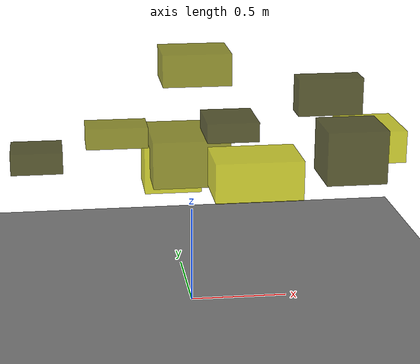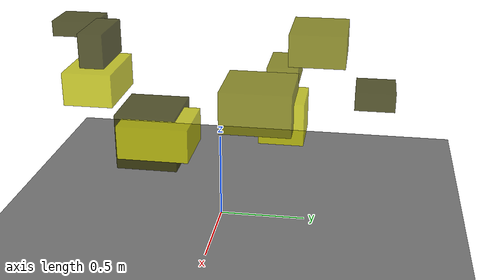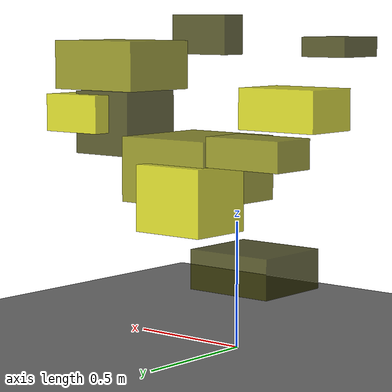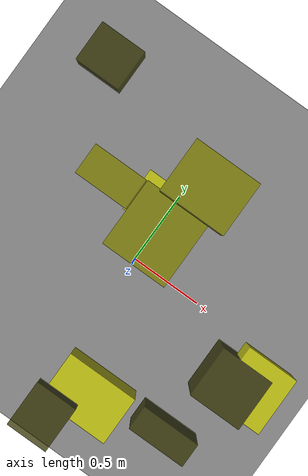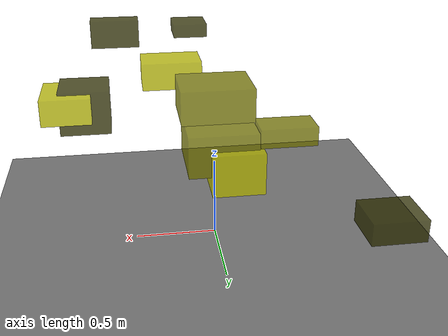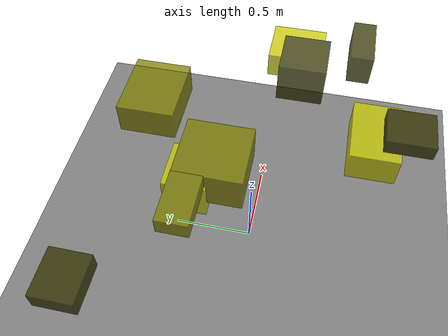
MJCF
<?xml version="1.0"?>
<mujoco model="obstacle_scene">
  <compiler angle="radian" coordinate="local"/>
  <option timestep="0.001" gravity="0 0 -9.81"/>

  <asset>
    <material name="obstacle_mat" rgba="0.8 0.8 0.0 0.8"/>
    <material name="ground_mat" rgba="0.5 0.5 0.5 1"/>
  </asset>

  <worldbody>
    <!-- Ground plane -->
    <geom name="ground" type="plane" size="3 3 0.1" material="ground_mat"/>

    <!-- Obstacles -->
    <body name="obstacle_0" pos="-0.788027 0.890934 0.527162">
      <geom name="obs_0" type="box" size="0.147484 0.129936 0.061675" rgba="0.2 0.2 0.0 0.8"/>
    </body>
    <body name="obstacle_1" pos="0.006268 0.228354 0.728452">
      <geom name="obs_1" type="box" size="0.198895 0.203955 0.122190" rgba="0.5 0.5 0.0 0.8"/>
    </body>
    <body name="obstacle_2" pos="0.209297 -0.645439 0.896934">
      <geom name="obs_2" type="box" size="0.198729 0.135145 0.090886" rgba="0.8 0.8 0.0 0.8"/>
    </body>
    <body name="obstacle_3" pos="0.569836 -0.494393 1.215351">
      <geom name="obs_3" type="box" size="0.148691 0.060482 0.085197" rgba="0.2 0.2 0.0 0.8"/>
    </body>
    <body name="obstacle_4" pos="0.081778 0.561672 1.124807">
      <geom name="obs_4" type="box" size="0.184454 0.149653 0.086439" rgba="0.5 0.5 0.0 0.8"/>
    </body>
    <body name="obstacle_5" pos="-0.068935 0.361677 0.634444">
      <geom name="obs_5" type="box" size="0.149287 0.128780 0.123484" rgba="0.8 0.8 0.0 0.8"/>
    </body>
    <body name="obstacle_6" pos="0.772416 -0.184032 0.843107">
      <geom name="obs_6" type="box" size="0.149903 0.145542 0.133802" rgba="0.2 0.2 0.0 0.8"/>
    </body>
    <body name="obstacle_7" pos="-0.360816 0.334704 0.816209">
      <geom name="obs_7" type="box" size="0.161661 0.092691 0.055048" rgba="0.5 0.5 0.0 0.8"/>
    </body>
    <body name="obstacle_8" pos="0.875649 -0.126407 0.884251">
      <geom name="obs_8" type="box" size="0.145838 0.166320 0.079527" rgba="0.8 0.8 0.0 0.8"/>
    </body>
    <body name="obstacle_9" pos="0.068179 -0.777898 1.164445">
      <geom name="obs_9" type="box" size="0.111328 0.121674 0.042159" rgba="0.2 0.2 0.0 0.8"/>
    </body>
  </worldbody>
</mujoco>
